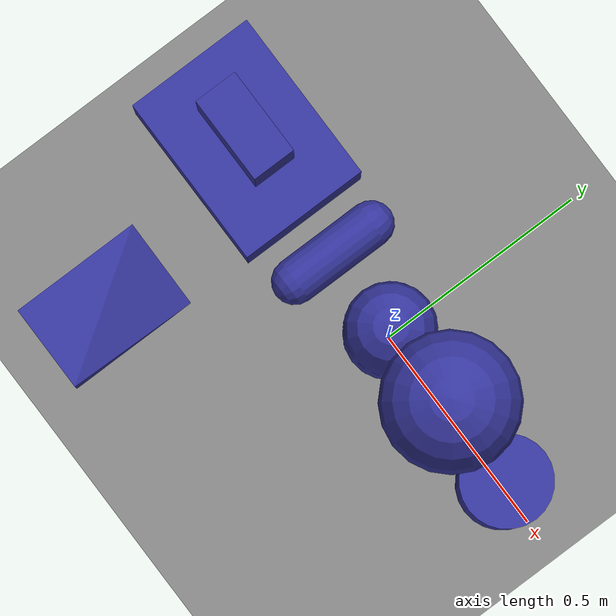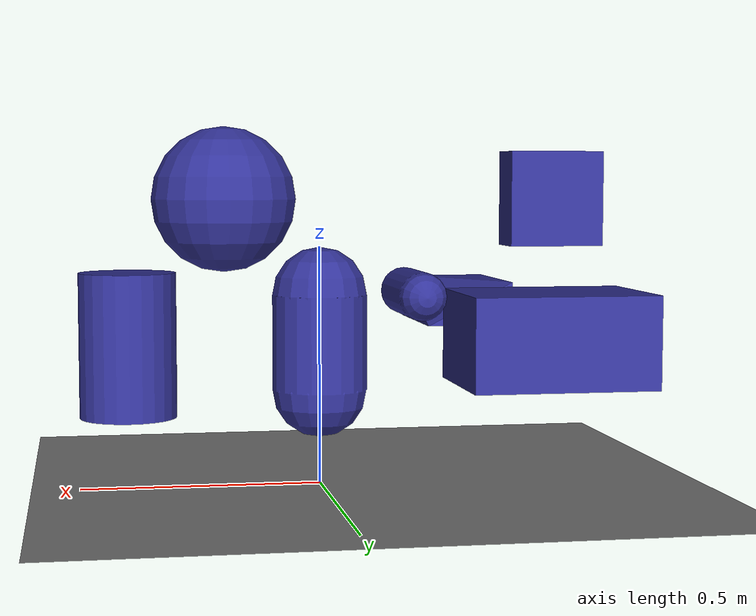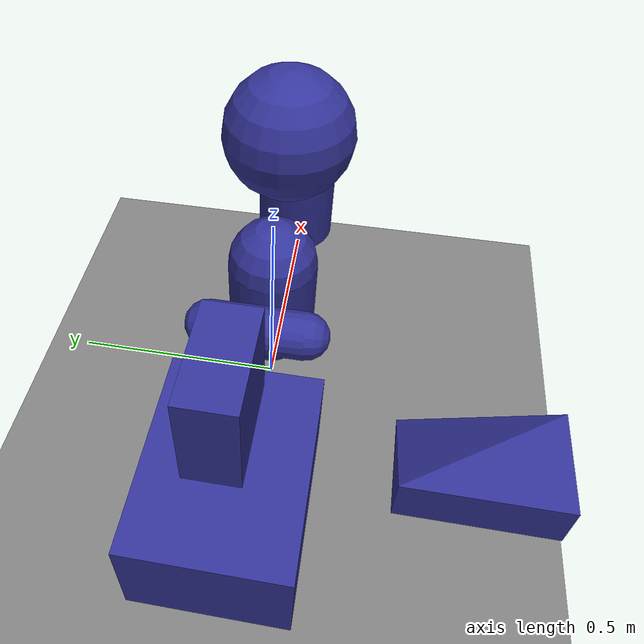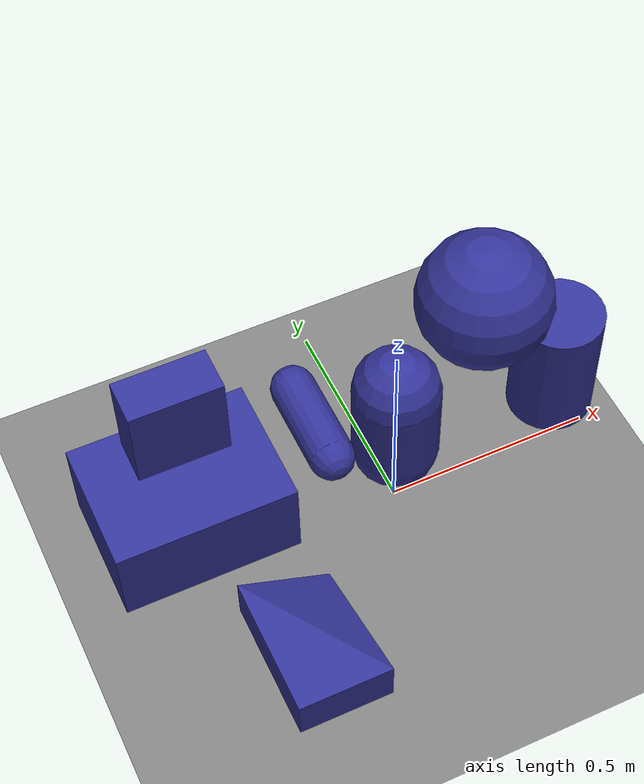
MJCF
<mujoco model="Primitive collisions">
  <asset>
    <mesh name="halfbox" scale=".2 .3 .1"
          vertex="0 0 0  1 0 0  0 1 0  1 1 0
                  0 0 1  1 0 1  0 1 1 "/>
  </asset>

  <default>
    <geom rgba=".2 .2 .6 1"/>
  </default>

  <worldbody>
    <light pos=".5 0 3"/>
    <light pos="-.5 0 3"/>
    <geom name="plane" type="plane" size="2 2 .01" rgba="0.5 0.5 0.5 1"/>

    <body pos=".2 0 .6">
      <freejoint/>
      <geom name="sphere" type="sphere" size=".15"/>
    </body>

    <body pos="0 0 .3">
      <freejoint/>
      <geom name="capsule1" type="capsule" size=".1 .1"/>
    </body>

    <body pos="-.2 0 .4" euler="90 0 0">
      <freejoint/>
      <geom name="capsule2" type="capsule" size=".05 .1"/>
    </body>

    <body pos=".4 0 .3">
      <freejoint/>
      <geom name="cylinder" type="cylinder" size=".1 .15"/>
    </body>

    <body pos="-.5 0 .3">
      <freejoint/>
      <geom name="box1" type="box" size=".2 .15 .1"/>
    </body>

    <body pos="-.5 0 .6">
      <freejoint/>
      <geom name="box2" type="box" size=".1 .05 .1"/>
    </body>

    <body pos="-.5 -.6 .3">
      <freejoint/>
      <geom name="mesh" type="mesh" mesh="halfbox"/>
    </body>

  </worldbody>

  <sensor>
    <fromto geom1="plane" geom2="sphere" cutoff="1"/>
    <fromto geom1="plane" geom2="capsule1" cutoff="1"/>
    <fromto geom1="plane" geom2="box1" cutoff="1"/>
    <fromto geom1="plane" geom2="cylinder" cutoff="1"/>
    <fromto geom1="plane" geom2="mesh" cutoff="1"/>

    <fromto geom1="capsule2" geom2="capsule1" cutoff="1"/>
    <fromto geom1="capsule1" geom2="sphere" cutoff="1"/>

    <fromto geom1="sphere" geom2="cylinder" cutoff="1"/>

    <fromto geom1="box1" geom2="sphere" cutoff="1"/>
    <fromto geom1="box2" geom2="capsule2" cutoff="1"/>
    <fromto geom1="box1" geom2="box2" cutoff="1"/>
  </sensor>
</mujoco>
